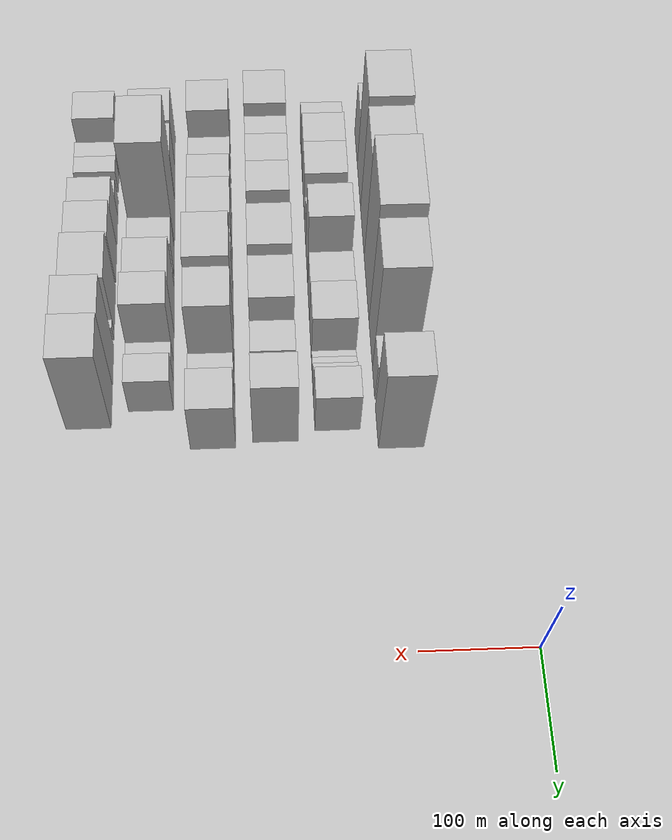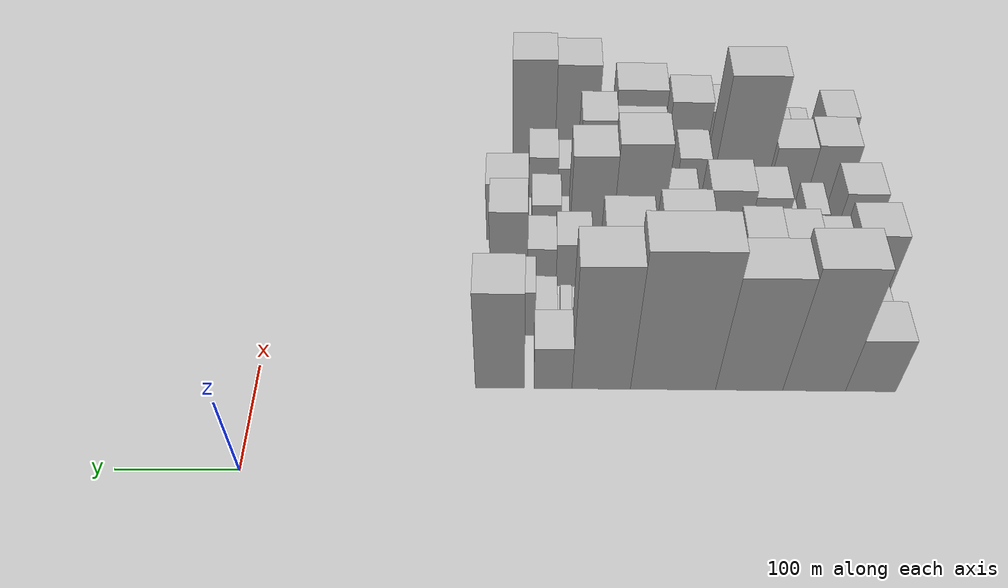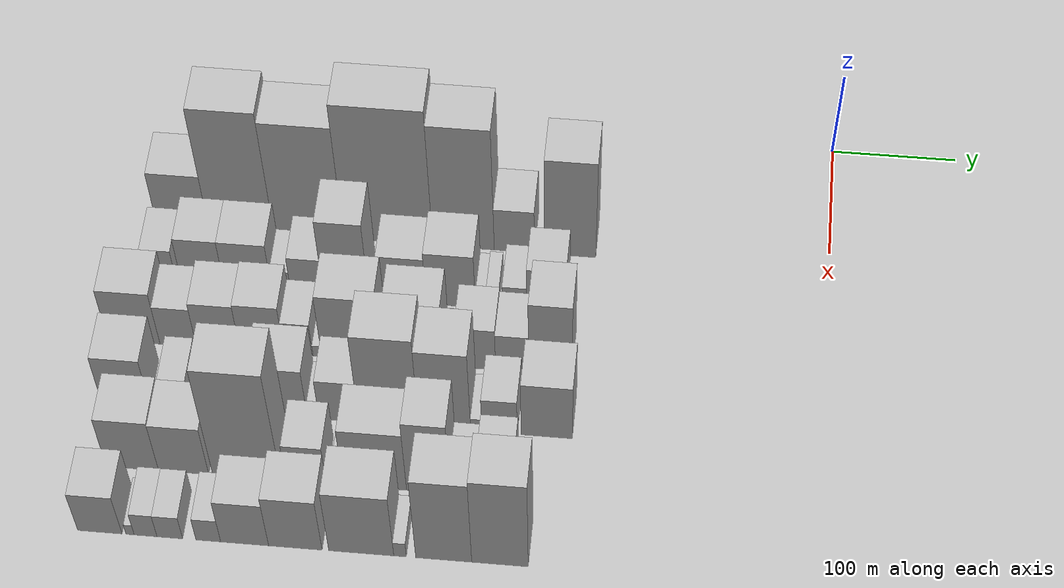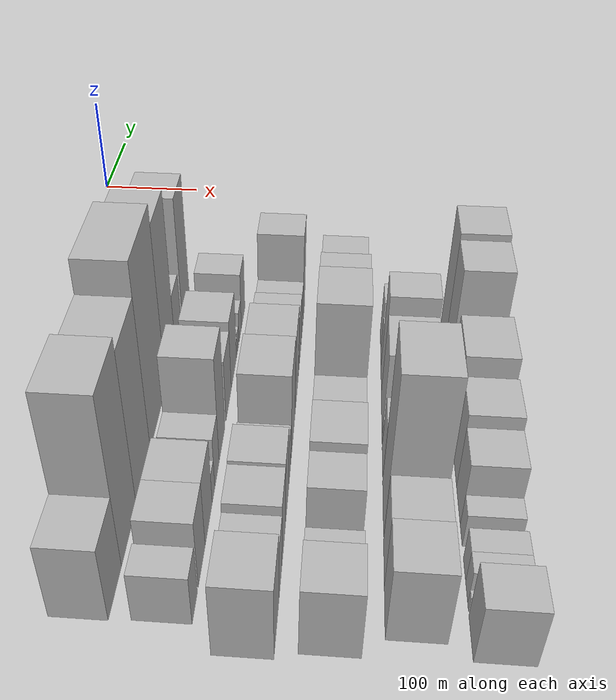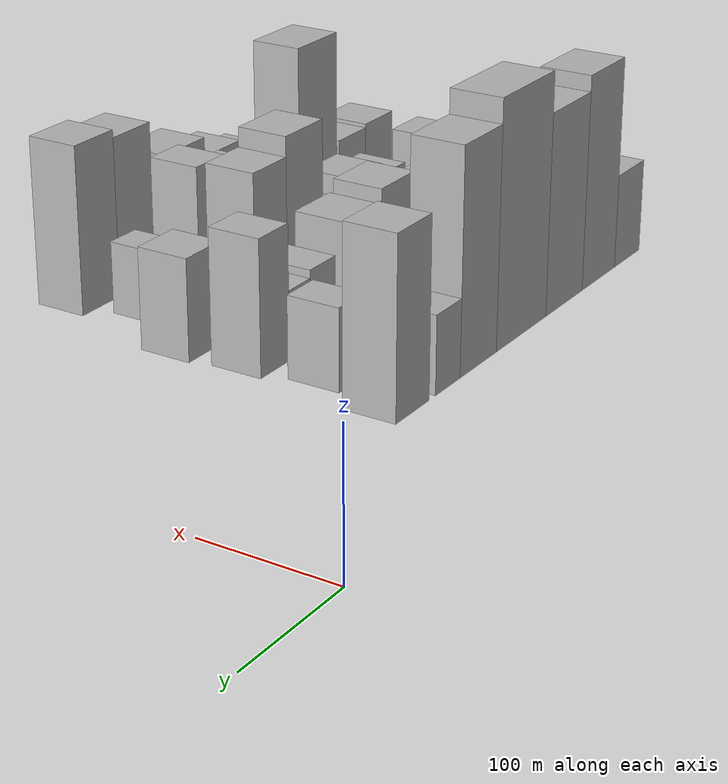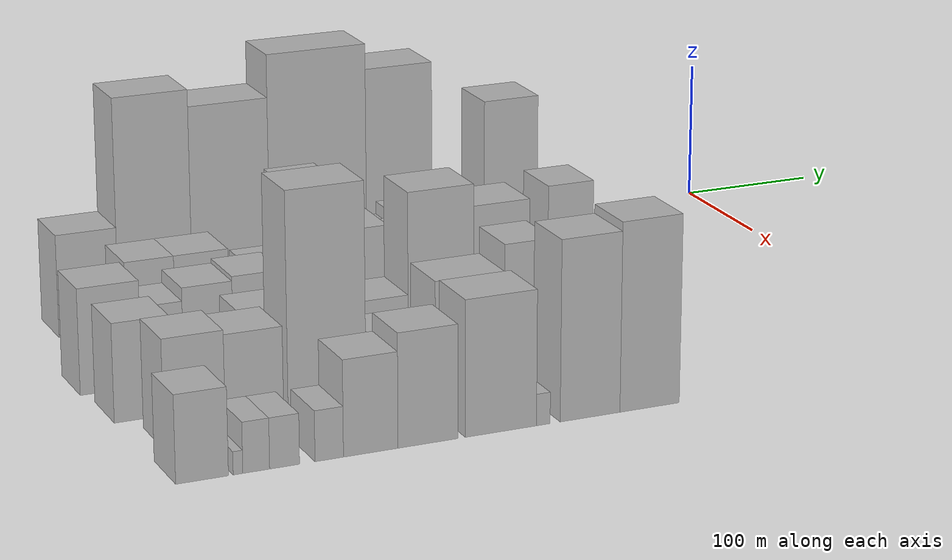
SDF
<sdf version="1.6">
 <world name="default">
  <model name="building_13">
   <static>1</static>
   <pose>100.0000 -517.2988 0 0.000000 0.000000 0.000000</pose>
   <link name="link">
    <pose>0 0 36.00 0 0 0</pose>
    <collision name="collision"><geometry><box><size>40.0000 42.1315 72.0000</size></box></geometry></collision>
    <visual name="visual">
     <cast_shadows>0</cast_shadows>
     <geometry><box><size>40.0000 42.1315 72.0000</size></box></geometry>
     <material>
      <script>
       <uri>model://HANNAS_wall/materials/scripts</uri>
       <uri>model://HANNAS_wall/materials/textures</uri>
       <name>vrc/HANNAS_wall</name>
      </script>
     </material>
    </visual>
   </link>
  </model>
  <model name="building_14">
   <static>1</static>
   <pose>100.0000 -469.8203 0 0.000000 0.000000 0.000000</pose>
   <link name="link">
    <pose>0 0 81.00 0 0 0</pose>
    <collision name="collision"><geometry><box><size>40.0000 52.8255 162.0000</size></box></geometry></collision>
    <visual name="visual">
     <cast_shadows>0</cast_shadows>
     <geometry><box><size>40.0000 52.8255 162.0000</size></box></geometry>
     <material>
      <script>
       <uri>model://HANNAS_wall/materials/scripts</uri>
       <uri>model://HANNAS_wall/materials/textures</uri>
       <name>vrc/HANNAS_wall</name>
      </script>
     </material>
    </visual>
   </link>
  </model>
  <model name="building_15">
   <static>1</static>
   <pose>100.0000 -415.1986 0 0.000000 0.000000 0.000000</pose>
   <link name="link">
    <pose>0 0 75.00 0 0 0</pose>
    <collision name="collision"><geometry><box><size>40.0000 56.4179 150.0000</size></box></geometry></collision>
    <visual name="visual">
     <cast_shadows>0</cast_shadows>
     <geometry><box><size>40.0000 56.4179 150.0000</size></box></geometry>
     <material>
      <script>
       <uri>model://HANNAS_wall/materials/scripts</uri>
       <uri>model://HANNAS_wall/materials/textures</uri>
       <name>vrc/HANNAS_wall</name>
      </script>
     </material>
    </visual>
   </link>
  </model>
  <model name="building_16">
   <static>1</static>
   <pose>100.0000 -351.2079 0 0.000000 0.000000 0.000000</pose>
   <link name="link">
    <pose>0 0 90.00 0 0 0</pose>
    <collision name="collision"><geometry><box><size>40.0000 71.5635 180.0000</size></box></geometry></collision>
    <visual name="visual">
     <cast_shadows>0</cast_shadows>
     <geometry><box><size>40.0000 71.5635 180.0000</size></box></geometry>
     <material>
      <script>
       <uri>model://HANNAS_wall/materials/scripts</uri>
       <uri>model://HANNAS_wall/materials/textures</uri>
       <name>vrc/HANNAS_wall</name>
      </script>
     </material>
    </visual>
   </link>
  </model>
  <model name="building_17">
   <static>1</static>
   <pose>100.0000 -290.7878 0 0.000000 0.000000 0.000000</pose>
   <link name="link">
    <pose>0 0 81.00 0 0 0</pose>
    <collision name="collision"><geometry><box><size>40.0000 49.2768 162.0000</size></box></geometry></collision>
    <visual name="visual">
     <cast_shadows>0</cast_shadows>
     <geometry><box><size>40.0000 49.2768 162.0000</size></box></geometry>
     <material>
      <script>
       <uri>model://HANNAS_wall/materials/scripts</uri>
       <uri>model://HANNAS_wall/materials/textures</uri>
       <name>vrc/HANNAS_wall</name>
      </script>
     </material>
    </visual>
   </link>
  </model>
  <model name="building_18">
   <static>1</static>
   <pose>100.0000 -250.1344 0 0.000000 0.000000 0.000000</pose>
   <link name="link">
    <pose>0 0 28.50 0 0 0</pose>
    <collision name="collision"><geometry><box><size>40.0000 32.0299 57.0000</size></box></geometry></collision>
    <visual name="visual">
     <cast_shadows>0</cast_shadows>
     <geometry><box><size>40.0000 32.0299 57.0000</size></box></geometry>
     <material>
      <script>
       <uri>model://HANNAS_wall/materials/scripts</uri>
       <uri>model://HANNAS_wall/materials/textures</uri>
       <name>vrc/HANNAS_wall</name>
      </script>
     </material>
    </visual>
   </link>
  </model>
  <model name="building_19">
   <static>1</static>
   <pose>100.0000 -205.5456 0 0.000000 0.000000 0.000000</pose>
   <link name="link">
    <pose>0 0 64.50 0 0 0</pose>
    <collision name="collision"><geometry><box><size>40.0000 41.1477 129.0000</size></box></geometry></collision>
    <visual name="visual">
     <cast_shadows>0</cast_shadows>
     <geometry><box><size>40.0000 41.1477 129.0000</size></box></geometry>
     <material>
      <script>
       <uri>model://HANNAS_wall/materials/scripts</uri>
       <uri>model://HANNAS_wall/materials/textures</uri>
       <name>vrc/HANNAS_wall</name>
      </script>
     </material>
    </visual>
   </link>
  </model>
  <model name="building_63">
   <static>1</static>
   <pose>155.0000 -524.7684 0 0.000000 0.000000 0.000000</pose>
   <link name="link">
    <pose>0 0 24.00 0 0 0</pose>
    <collision name="collision"><geometry><box><size>40.0000 24.3677 48.0000</size></box></geometry></collision>
    <visual name="visual">
     <cast_shadows>0</cast_shadows>
     <geometry><box><size>40.0000 24.3677 48.0000</size></box></geometry>
     <material>
      <script>
       <uri>model://HANNAS_wall/materials/scripts</uri>
       <uri>model://HANNAS_wall/materials/textures</uri>
       <name>vrc/HANNAS_wall</name>
      </script>
     </material>
    </visual>
   </link>
  </model>
  <model name="building_64">
   <static>1</static>
   <pose>155.0000 -491.5794 0 0.000000 0.000000 0.000000</pose>
   <link name="link">
    <pose>0 0 33.00 0 0 0</pose>
    <collision name="collision"><geometry><box><size>40.0000 34.0102 66.0000</size></box></geometry></collision>
    <visual name="visual">
     <cast_shadows>0</cast_shadows>
     <geometry><box><size>40.0000 34.0102 66.0000</size></box></geometry>
     <material>
      <script>
       <uri>model://HANNAS_wall/materials/scripts</uri>
       <uri>model://HANNAS_wall/materials/textures</uri>
       <name>vrc/HANNAS_wall</name>
      </script>
     </material>
    </visual>
   </link>
  </model>
  <model name="building_65">
   <static>1</static>
   <pose>155.0000 -455.6357 0 0.000000 0.000000 0.000000</pose>
   <link name="link">
    <pose>0 0 33.00 0 0 0</pose>
    <collision name="collision"><geometry><box><size>40.0000 37.8774 66.0000</size></box></geometry></collision>
    <visual name="visual">
     <cast_shadows>0</cast_shadows>
     <geometry><box><size>40.0000 37.8774 66.0000</size></box></geometry>
     <material>
      <script>
       <uri>model://HANNAS_wall/materials/scripts</uri>
       <uri>model://HANNAS_wall/materials/textures</uri>
       <name>vrc/HANNAS_wall</name>
      </script>
     </material>
    </visual>
   </link>
  </model>
  <model name="building_66">
   <static>1</static>
   <pose>155.0000 -429.1289 0 0.000000 0.000000 0.000000</pose>
   <link name="link">
    <pose>0 0 15.00 0 0 0</pose>
    <collision name="collision"><geometry><box><size>40.0000 15.1361 30.0000</size></box></geometry></collision>
    <visual name="visual">
     <cast_shadows>0</cast_shadows>
     <geometry><box><size>40.0000 15.1361 30.0000</size></box></geometry>
     <material>
      <script>
       <uri>model://HANNAS_wall/materials/scripts</uri>
       <uri>model://HANNAS_wall/materials/textures</uri>
       <name>vrc/HANNAS_wall</name>
      </script>
     </material>
    </visual>
   </link>
  </model>
  <model name="building_67">
   <static>1</static>
   <pose>155.0000 -408.6569 0 0.000000 0.000000 0.000000</pose>
   <link name="link">
    <pose>0 0 25.50 0 0 0</pose>
    <collision name="collision"><geometry><box><size>40.0000 25.8079 51.0000</size></box></geometry></collision>
    <visual name="visual">
     <cast_shadows>0</cast_shadows>
     <geometry><box><size>40.0000 25.8079 51.0000</size></box></geometry>
     <material>
      <script>
       <uri>model://HANNAS_wall/materials/scripts</uri>
       <uri>model://HANNAS_wall/materials/textures</uri>
       <name>vrc/HANNAS_wall</name>
      </script>
     </material>
    </visual>
   </link>
  </model>
  <model name="building_68">
   <static>1</static>
   <pose>155.0000 -377.7019 0 0.000000 0.000000 0.000000</pose>
   <link name="link">
    <pose>0 0 52.50 0 0 0</pose>
    <collision name="collision"><geometry><box><size>40.0000 36.1021 105.0000</size></box></geometry></collision>
    <visual name="visual">
     <cast_shadows>0</cast_shadows>
     <geometry><box><size>40.0000 36.1021 105.0000</size></box></geometry>
     <material>
      <script>
       <uri>model://HANNAS_wall/materials/scripts</uri>
       <uri>model://HANNAS_wall/materials/textures</uri>
       <name>vrc/HANNAS_wall</name>
      </script>
     </material>
    </visual>
   </link>
  </model>
  <model name="building_69">
   <static>1</static>
   <pose>155.0000 -333.0927 0 0.000000 0.000000 0.000000</pose>
   <link name="link">
    <pose>0 0 31.50 0 0 0</pose>
    <collision name="collision"><geometry><box><size>40.0000 37.1162 63.0000</size></box></geometry></collision>
    <visual name="visual">
     <cast_shadows>0</cast_shadows>
     <geometry><box><size>40.0000 37.1162 63.0000</size></box></geometry>
     <material>
      <script>
       <uri>model://HANNAS_wall/materials/scripts</uri>
       <uri>model://HANNAS_wall/materials/textures</uri>
       <name>vrc/HANNAS_wall</name>
      </script>
     </material>
    </visual>
   </link>
  </model>
  <model name="building_70">
   <static>1</static>
   <pose>155.0000 -295.0050 0 0.000000 0.000000 0.000000</pose>
   <link name="link">
    <pose>0 0 36.00 0 0 0</pose>
    <collision name="collision"><geometry><box><size>40.0000 39.0592 72.0000</size></box></geometry></collision>
    <visual name="visual">
     <cast_shadows>0</cast_shadows>
     <geometry><box><size>40.0000 39.0592 72.0000</size></box></geometry>
     <material>
      <script>
       <uri>model://HANNAS_wall/materials/scripts</uri>
       <uri>model://HANNAS_wall/materials/textures</uri>
       <name>vrc/HANNAS_wall</name>
      </script>
     </material>
    </visual>
   </link>
  </model>
  <model name="building_71">
   <static>1</static>
   <pose>155.0000 -271.3740 0 0.000000 0.000000 0.000000</pose>
   <link name="link">
    <pose>0 0 9.00 0 0 0</pose>
    <collision name="collision"><geometry><box><size>40.0000 8.2028 18.0000</size></box></geometry></collision>
    <visual name="visual">
     <cast_shadows>0</cast_shadows>
     <geometry><box><size>40.0000 8.2028 18.0000</size></box></geometry>
     <material>
      <script>
       <uri>model://HANNAS_wall/materials/scripts</uri>
       <uri>model://HANNAS_wall/materials/textures</uri>
       <name>vrc/HANNAS_wall</name>
      </script>
     </material>
    </visual>
   </link>
  </model>
  <model name="building_72">
   <static>1</static>
   <pose>155.0000 -262.2273 0 0.000000 0.000000 0.000000</pose>
   <link name="link">
    <pose>0 0 10.50 0 0 0</pose>
    <collision name="collision"><geometry><box><size>40.0000 10.0905 21.0000</size></box></geometry></collision>
    <visual name="visual">
     <cast_shadows>0</cast_shadows>
     <geometry><box><size>40.0000 10.0905 21.0000</size></box></geometry>
     <material>
      <script>
       <uri>model://HANNAS_wall/materials/scripts</uri>
       <uri>model://HANNAS_wall/materials/textures</uri>
       <name>vrc/HANNAS_wall</name>
      </script>
     </material>
    </visual>
   </link>
  </model>
  <model name="building_73">
   <static>1</static>
   <pose>155.0000 -244.6252 0 0.000000 0.000000 0.000000</pose>
   <link name="link">
    <pose>0 0 16.50 0 0 0</pose>
    <collision name="collision"><geometry><box><size>40.0000 19.1138 33.0000</size></box></geometry></collision>
    <visual name="visual">
     <cast_shadows>0</cast_shadows>
     <geometry><box><size>40.0000 19.1138 33.0000</size></box></geometry>
     <material>
      <script>
       <uri>model://HANNAS_wall/materials/scripts</uri>
       <uri>model://HANNAS_wall/materials/textures</uri>
       <name>vrc/HANNAS_wall</name>
      </script>
     </material>
    </visual>
   </link>
  </model>
  <model name="building_74">
   <static>1</static>
   <pose>155.0000 -219.6607 0 0.000000 0.000000 0.000000</pose>
   <link name="link">
    <pose>0 0 30.00 0 0 0</pose>
    <collision name="collision"><geometry><box><size>40.0000 30.8153 60.0000</size></box></geometry></collision>
    <visual name="visual">
     <cast_shadows>0</cast_shadows>
     <geometry><box><size>40.0000 30.8153 60.0000</size></box></geometry>
     <material>
      <script>
       <uri>model://HANNAS_wall/materials/scripts</uri>
       <uri>model://HANNAS_wall/materials/textures</uri>
       <name>vrc/HANNAS_wall</name>
      </script>
     </material>
    </visual>
   </link>
  </model>
  <model name="building_114">
   <static>1</static>
   <pose>210.0000 -537.2706 0 0.000000 0.000000 0.000000</pose>
   <link name="link">
    <pose>0 0 36.00 0 0 0</pose>
    <collision name="collision"><geometry><box><size>40.0000 41.1399 72.0000</size></box></geometry></collision>
    <visual name="visual">
     <cast_shadows>0</cast_shadows>
     <geometry><box><size>40.0000 41.1399 72.0000</size></box></geometry>
     <material>
      <script>
       <uri>model://HANNAS_wall/materials/scripts</uri>
       <uri>model://HANNAS_wall/materials/textures</uri>
       <name>vrc/HANNAS_wall</name>
      </script>
     </material>
    </visual>
   </link>
  </model>
  <model name="building_115">
   <static>1</static>
   <pose>210.0000 -502.3409 0 0.000000 0.000000 0.000000</pose>
   <link name="link">
    <pose>0 0 27.00 0 0 0</pose>
    <collision name="collision"><geometry><box><size>40.0000 28.7194 54.0000</size></box></geometry></collision>
    <visual name="visual">
     <cast_shadows>0</cast_shadows>
     <geometry><box><size>40.0000 28.7194 54.0000</size></box></geometry>
     <material>
      <script>
       <uri>model://HANNAS_wall/materials/scripts</uri>
       <uri>model://HANNAS_wall/materials/textures</uri>
       <name>vrc/HANNAS_wall</name>
      </script>
     </material>
    </visual>
   </link>
  </model>
  <model name="building_116">
   <static>1</static>
   <pose>210.0000 -470.8839 0 0.000000 0.000000 0.000000</pose>
   <link name="link">
    <pose>0 0 31.50 0 0 0</pose>
    <collision name="collision"><geometry><box><size>40.0000 34.1946 63.0000</size></box></geometry></collision>
    <visual name="visual">
     <cast_shadows>0</cast_shadows>
     <geometry><box><size>40.0000 34.1946 63.0000</size></box></geometry>
     <material>
      <script>
       <uri>model://HANNAS_wall/materials/scripts</uri>
       <uri>model://HANNAS_wall/materials/textures</uri>
       <name>vrc/HANNAS_wall</name>
      </script>
     </material>
    </visual>
   </link>
  </model>
  <model name="building_117">
   <static>1</static>
   <pose>210.0000 -436.3825 0 0.000000 0.000000 0.000000</pose>
   <link name="link">
    <pose>0 0 33.00 0 0 0</pose>
    <collision name="collision"><geometry><box><size>40.0000 34.8083 66.0000</size></box></geometry></collision>
    <visual name="visual">
     <cast_shadows>0</cast_shadows>
     <geometry><box><size>40.0000 34.8083 66.0000</size></box></geometry>
     <material>
      <script>
       <uri>model://HANNAS_wall/materials/scripts</uri>
       <uri>model://HANNAS_wall/materials/textures</uri>
       <name>vrc/HANNAS_wall</name>
      </script>
     </material>
    </visual>
   </link>
  </model>
  <model name="building_118">
   <static>1</static>
   <pose>210.0000 -407.7210 0 0.000000 0.000000 0.000000</pose>
   <link name="link">
    <pose>0 0 22.50 0 0 0</pose>
    <collision name="collision"><geometry><box><size>40.0000 22.5147 45.0000</size></box></geometry></collision>
    <visual name="visual">
     <cast_shadows>0</cast_shadows>
     <geometry><box><size>40.0000 22.5147 45.0000</size></box></geometry>
     <material>
      <script>
       <uri>model://HANNAS_wall/materials/scripts</uri>
       <uri>model://HANNAS_wall/materials/textures</uri>
       <name>vrc/HANNAS_wall</name>
      </script>
     </material>
    </visual>
   </link>
  </model>
  <model name="building_119">
   <static>1</static>
   <pose>210.0000 -393.0815 0 0.000000 0.000000 0.000000</pose>
   <link name="link">
    <pose>0 0 7.50 0 0 0</pose>
    <collision name="collision"><geometry><box><size>40.0000 6.7642 15.0000</size></box></geometry></collision>
    <visual name="visual">
     <cast_shadows>0</cast_shadows>
     <geometry><box><size>40.0000 6.7642 15.0000</size></box></geometry>
     <material>
      <script>
       <uri>model://HANNAS_wall/materials/scripts</uri>
       <uri>model://HANNAS_wall/materials/textures</uri>
       <name>vrc/HANNAS_wall</name>
      </script>
     </material>
    </visual>
   </link>
  </model>
  <model name="building_120">
   <static>1</static>
   <pose>210.0000 -367.2311 0 0.000000 0.000000 0.000000</pose>
   <link name="link">
    <pose>0 0 43.50 0 0 0</pose>
    <collision name="collision"><geometry><box><size>40.0000 44.9367 87.0000</size></box></geometry></collision>
    <visual name="visual">
     <cast_shadows>0</cast_shadows>
     <geometry><box><size>40.0000 44.9367 87.0000</size></box></geometry>
     <material>
      <script>
       <uri>model://HANNAS_wall/materials/scripts</uri>
       <uri>model://HANNAS_wall/materials/textures</uri>
       <name>vrc/HANNAS_wall</name>
      </script>
     </material>
    </visual>
   </link>
  </model>
  <model name="building_121">
   <static>1</static>
   <pose>210.0000 -317.6143 0 0.000000 0.000000 0.000000</pose>
   <link name="link">
    <pose>0 0 39.00 0 0 0</pose>
    <collision name="collision"><geometry><box><size>40.0000 44.2969 78.0000</size></box></geometry></collision>
    <visual name="visual">
     <cast_shadows>0</cast_shadows>
     <geometry><box><size>40.0000 44.2969 78.0000</size></box></geometry>
     <material>
      <script>
       <uri>model://HANNAS_wall/materials/scripts</uri>
       <uri>model://HANNAS_wall/materials/textures</uri>
       <name>vrc/HANNAS_wall</name>
      </script>
     </material>
    </visual>
   </link>
  </model>
  <model name="building_122">
   <static>1</static>
   <pose>210.0000 -290.3546 0 0.000000 0.000000 0.000000</pose>
   <link name="link">
    <pose>0 0 10.50 0 0 0</pose>
    <collision name="collision"><geometry><box><size>40.0000 10.2226 21.0000</size></box></geometry></collision>
    <visual name="visual">
     <cast_shadows>0</cast_shadows>
     <geometry><box><size>40.0000 10.2226 21.0000</size></box></geometry>
     <material>
      <script>
       <uri>model://HANNAS_wall/materials/scripts</uri>
       <uri>model://HANNAS_wall/materials/textures</uri>
       <name>vrc/HANNAS_wall</name>
      </script>
     </material>
    </visual>
   </link>
  </model>
  <model name="building_123">
   <static>1</static>
   <pose>210.0000 -269.6053 0 0.000000 0.000000 0.000000</pose>
   <link name="link">
    <pose>0 0 28.50 0 0 0</pose>
    <collision name="collision"><geometry><box><size>40.0000 31.2760 57.0000</size></box></geometry></collision>
    <visual name="visual">
     <cast_shadows>0</cast_shadows>
     <geometry><box><size>40.0000 31.2760 57.0000</size></box></geometry>
     <material>
      <script>
       <uri>model://HANNAS_wall/materials/scripts</uri>
       <uri>model://HANNAS_wall/materials/textures</uri>
       <name>vrc/HANNAS_wall</name>
      </script>
     </material>
    </visual>
   </link>
  </model>
  <model name="building_124">
   <static>1</static>
   <pose>210.0000 -241.1120 0 0.000000 0.000000 0.000000</pose>
   <link name="link">
    <pose>0 0 25.50 0 0 0</pose>
    <collision name="collision"><geometry><box><size>40.0000 25.7106 51.0000</size></box></geometry></collision>
    <visual name="visual">
     <cast_shadows>0</cast_shadows>
     <geometry><box><size>40.0000 25.7106 51.0000</size></box></geometry>
     <material>
      <script>
       <uri>model://HANNAS_wall/materials/scripts</uri>
       <uri>model://HANNAS_wall/materials/textures</uri>
       <name>vrc/HANNAS_wall</name>
      </script>
     </material>
    </visual>
   </link>
  </model>
  <model name="building_125">
   <static>1</static>
   <pose>210.0000 -211.4974 0 0.000000 0.000000 0.000000</pose>
   <link name="link">
    <pose>0 0 49.50 0 0 0</pose>
    <collision name="collision"><geometry><box><size>40.0000 33.5185 99.0000</size></box></geometry></collision>
    <visual name="visual">
     <cast_shadows>0</cast_shadows>
     <geometry><box><size>40.0000 33.5185 99.0000</size></box></geometry>
     <material>
      <script>
       <uri>model://HANNAS_wall/materials/scripts</uri>
       <uri>model://HANNAS_wall/materials/textures</uri>
       <name>vrc/HANNAS_wall</name>
      </script>
     </material>
    </visual>
   </link>
  </model>
  <model name="building_167">
   <static>1</static>
   <pose>265.0000 -533.9964 0 0.000000 0.000000 0.000000</pose>
   <link name="link">
    <pose>0 0 33.00 0 0 0</pose>
    <collision name="collision"><geometry><box><size>40.0000 37.6752 66.0000</size></box></geometry></collision>
    <visual name="visual">
     <cast_shadows>0</cast_shadows>
     <geometry><box><size>40.0000 37.6752 66.0000</size></box></geometry>
     <material>
      <script>
       <uri>model://HANNAS_wall/materials/scripts</uri>
       <uri>model://HANNAS_wall/materials/textures</uri>
       <name>vrc/HANNAS_wall</name>
      </script>
     </material>
    </visual>
   </link>
  </model>
  <model name="building_168">
   <static>1</static>
   <pose>265.0000 -494.4624 0 0.000000 0.000000 0.000000</pose>
   <link name="link">
    <pose>0 0 19.50 0 0 0</pose>
    <collision name="collision"><geometry><box><size>40.0000 21.3929 39.0000</size></box></geometry></collision>
    <visual name="visual">
     <cast_shadows>0</cast_shadows>
     <geometry><box><size>40.0000 21.3929 39.0000</size></box></geometry>
     <material>
      <script>
       <uri>model://HANNAS_wall/materials/scripts</uri>
       <uri>model://HANNAS_wall/materials/textures</uri>
       <name>vrc/HANNAS_wall</name>
      </script>
     </material>
    </visual>
   </link>
  </model>
  <model name="building_169">
   <static>1</static>
   <pose>265.0000 -480.7488 0 0.000000 0.000000 0.000000</pose>
   <link name="link">
    <pose>0 0 7.50 0 0 0</pose>
    <collision name="collision"><geometry><box><size>40.0000 6.0342 15.0000</size></box></geometry></collision>
    <visual name="visual">
     <cast_shadows>0</cast_shadows>
     <geometry><box><size>40.0000 6.0342 15.0000</size></box></geometry>
     <material>
      <script>
       <uri>model://HANNAS_wall/materials/scripts</uri>
       <uri>model://HANNAS_wall/materials/textures</uri>
       <name>vrc/HANNAS_wall</name>
      </script>
     </material>
    </visual>
   </link>
  </model>
  <model name="building_170">
   <static>1</static>
   <pose>265.0000 -451.0781 0 0.000000 0.000000 0.000000</pose>
   <link name="link">
    <pose>0 0 30.00 0 0 0</pose>
    <collision name="collision"><geometry><box><size>40.0000 33.3073 60.0000</size></box></geometry></collision>
    <visual name="visual">
     <cast_shadows>0</cast_shadows>
     <geometry><box><size>40.0000 33.3073 60.0000</size></box></geometry>
     <material>
      <script>
       <uri>model://HANNAS_wall/materials/scripts</uri>
       <uri>model://HANNAS_wall/materials/textures</uri>
       <name>vrc/HANNAS_wall</name>
      </script>
     </material>
    </visual>
   </link>
  </model>
  <model name="building_171">
   <static>1</static>
   <pose>265.0000 -413.7331 0 0.000000 0.000000 0.000000</pose>
   <link name="link">
    <pose>0 0 34.50 0 0 0</pose>
    <collision name="collision"><geometry><box><size>40.0000 41.3826 69.0000</size></box></geometry></collision>
    <visual name="visual">
     <cast_shadows>0</cast_shadows>
     <geometry><box><size>40.0000 41.3826 69.0000</size></box></geometry>
     <material>
      <script>
       <uri>model://HANNAS_wall/materials/scripts</uri>
       <uri>model://HANNAS_wall/materials/textures</uri>
       <name>vrc/HANNAS_wall</name>
      </script>
     </material>
    </visual>
   </link>
  </model>
  <model name="building_172">
   <static>1</static>
   <pose>265.0000 -388.5617 0 0.000000 0.000000 0.000000</pose>
   <link name="link">
    <pose>0 0 9.00 0 0 0</pose>
    <collision name="collision"><geometry><box><size>40.0000 8.9601 18.0000</size></box></geometry></collision>
    <visual name="visual">
     <cast_shadows>0</cast_shadows>
     <geometry><box><size>40.0000 8.9601 18.0000</size></box></geometry>
     <material>
      <script>
       <uri>model://HANNAS_wall/materials/scripts</uri>
       <uri>model://HANNAS_wall/materials/textures</uri>
       <name>vrc/HANNAS_wall</name>
      </script>
     </material>
    </visual>
   </link>
  </model>
  <model name="building_173">
   <static>1</static>
   <pose>265.0000 -368.8034 0 0.000000 0.000000 0.000000</pose>
   <link name="link">
    <pose>0 0 28.50 0 0 0</pose>
    <collision name="collision"><geometry><box><size>40.0000 30.5565 57.0000</size></box></geometry></collision>
    <visual name="visual">
     <cast_shadows>0</cast_shadows>
     <geometry><box><size>40.0000 30.5565 57.0000</size></box></geometry>
     <material>
      <script>
       <uri>model://HANNAS_wall/materials/scripts</uri>
       <uri>model://HANNAS_wall/materials/textures</uri>
       <name>vrc/HANNAS_wall</name>
      </script>
     </material>
    </visual>
   </link>
  </model>
  <model name="building_174">
   <static>1</static>
   <pose>265.0000 -330.4891 0 0.000000 0.000000 0.000000</pose>
   <link name="link">
    <pose>0 0 63.00 0 0 0</pose>
    <collision name="collision"><geometry><box><size>40.0000 46.0722 126.0000</size></box></geometry></collision>
    <visual name="visual">
     <cast_shadows>0</cast_shadows>
     <geometry><box><size>40.0000 46.0722 126.0000</size></box></geometry>
     <material>
      <script>
       <uri>model://HANNAS_wall/materials/scripts</uri>
       <uri>model://HANNAS_wall/materials/textures</uri>
       <name>vrc/HANNAS_wall</name>
      </script>
     </material>
    </visual>
   </link>
  </model>
  <model name="building_175">
   <static>1</static>
   <pose>265.0000 -287.5392 0 0.000000 0.000000 0.000000</pose>
   <link name="link">
    <pose>0 0 55.50 0 0 0</pose>
    <collision name="collision"><geometry><box><size>40.0000 39.8275 111.0000</size></box></geometry></collision>
    <visual name="visual">
     <cast_shadows>0</cast_shadows>
     <geometry><box><size>40.0000 39.8275 111.0000</size></box></geometry>
     <material>
      <script>
       <uri>model://HANNAS_wall/materials/scripts</uri>
       <uri>model://HANNAS_wall/materials/textures</uri>
       <name>vrc/HANNAS_wall</name>
      </script>
     </material>
    </visual>
   </link>
  </model>
  <model name="building_176">
   <static>1</static>
   <pose>265.0000 -263.3163 0 0.000000 0.000000 0.000000</pose>
   <link name="link">
    <pose>0 0 9.00 0 0 0</pose>
    <collision name="collision"><geometry><box><size>40.0000 8.6185 18.0000</size></box></geometry></collision>
    <visual name="visual">
     <cast_shadows>0</cast_shadows>
     <geometry><box><size>40.0000 8.6185 18.0000</size></box></geometry>
     <material>
      <script>
       <uri>model://HANNAS_wall/materials/scripts</uri>
       <uri>model://HANNAS_wall/materials/textures</uri>
       <name>vrc/HANNAS_wall</name>
      </script>
     </material>
    </visual>
   </link>
  </model>
  <model name="building_177">
   <static>1</static>
   <pose>265.0000 -245.4516 0 0.000000 0.000000 0.000000</pose>
   <link name="link">
    <pose>0 0 24.00 0 0 0</pose>
    <collision name="collision"><geometry><box><size>40.0000 27.1108 48.0000</size></box></geometry></collision>
    <visual name="visual">
     <cast_shadows>0</cast_shadows>
     <geometry><box><size>40.0000 27.1108 48.0000</size></box></geometry>
     <material>
      <script>
       <uri>model://HANNAS_wall/materials/scripts</uri>
       <uri>model://HANNAS_wall/materials/textures</uri>
       <name>vrc/HANNAS_wall</name>
      </script>
     </material>
    </visual>
   </link>
  </model>
  <model name="building_178">
   <static>1</static>
   <pose>265.0000 -209.3590 0 0.000000 0.000000 0.000000</pose>
   <link name="link">
    <pose>0 0 37.50 0 0 0</pose>
    <collision name="collision"><geometry><box><size>40.0000 39.0744 75.0000</size></box></geometry></collision>
    <visual name="visual">
     <cast_shadows>0</cast_shadows>
     <geometry><box><size>40.0000 39.0744 75.0000</size></box></geometry>
     <material>
      <script>
       <uri>model://HANNAS_wall/materials/scripts</uri>
       <uri>model://HANNAS_wall/materials/textures</uri>
       <name>vrc/HANNAS_wall</name>
      </script>
     </material>
    </visual>
   </link>
  </model>
  <model name="building_219">
   <static>1</static>
   <pose>320.0000 -518.7777 0 0.000000 0.000000 0.000000</pose>
   <link name="link">
    <pose>0 0 36.00 0 0 0</pose>
    <collision name="collision"><geometry><box><size>40.0000 39.9292 72.0000</size></box></geometry></collision>
    <visual name="visual">
     <cast_shadows>0</cast_shadows>
     <geometry><box><size>40.0000 39.9292 72.0000</size></box></geometry>
     <material>
      <script>
       <uri>model://HANNAS_wall/materials/scripts</uri>
       <uri>model://HANNAS_wall/materials/textures</uri>
       <name>vrc/HANNAS_wall</name>
      </script>
     </material>
    </visual>
   </link>
  </model>
  <model name="building_220">
   <static>1</static>
   <pose>320.0000 -479.6489 0 0.000000 0.000000 0.000000</pose>
   <link name="link">
    <pose>0 0 34.50 0 0 0</pose>
    <collision name="collision"><geometry><box><size>40.0000 38.3283 69.0000</size></box></geometry></collision>
    <visual name="visual">
     <cast_shadows>0</cast_shadows>
     <geometry><box><size>40.0000 38.3283 69.0000</size></box></geometry>
     <material>
      <script>
       <uri>model://HANNAS_wall/materials/scripts</uri>
       <uri>model://HANNAS_wall/materials/textures</uri>
       <name>vrc/HANNAS_wall</name>
      </script>
     </material>
    </visual>
   </link>
  </model>
  <model name="building_221">
   <static>1</static>
   <pose>320.0000 -431.4574 0 0.000000 0.000000 0.000000</pose>
   <link name="link">
    <pose>0 0 78.00 0 0 0</pose>
    <collision name="collision"><geometry><box><size>40.0000 52.0548 156.0000</size></box></geometry></collision>
    <visual name="visual">
     <cast_shadows>0</cast_shadows>
     <geometry><box><size>40.0000 52.0548 156.0000</size></box></geometry>
     <material>
      <script>
       <uri>model://HANNAS_wall/materials/scripts</uri>
       <uri>model://HANNAS_wall/materials/textures</uri>
       <name>vrc/HANNAS_wall</name>
      </script>
     </material>
    </visual>
   </link>
  </model>
  <model name="building_222">
   <static>1</static>
   <pose>320.0000 -386.2650 0 0.000000 0.000000 0.000000</pose>
   <link name="link">
    <pose>0 0 27.00 0 0 0</pose>
    <collision name="collision"><geometry><box><size>40.0000 30.3300 54.0000</size></box></geometry></collision>
    <visual name="visual">
     <cast_shadows>0</cast_shadows>
     <geometry><box><size>40.0000 30.3300 54.0000</size></box></geometry>
     <material>
      <script>
       <uri>model://HANNAS_wall/materials/scripts</uri>
       <uri>model://HANNAS_wall/materials/textures</uri>
       <name>vrc/HANNAS_wall</name>
      </script>
     </material>
    </visual>
   </link>
  </model>
  <model name="building_223">
   <static>1</static>
   <pose>320.0000 -362.6008 0 0.000000 0.000000 0.000000</pose>
   <link name="link">
    <pose>0 0 10.50 0 0 0</pose>
    <collision name="collision"><geometry><box><size>40.0000 8.9984 21.0000</size></box></geometry></collision>
    <visual name="visual">
     <cast_shadows>0</cast_shadows>
     <geometry><box><size>40.0000 8.9984 21.0000</size></box></geometry>
     <material>
      <script>
       <uri>model://HANNAS_wall/materials/scripts</uri>
       <uri>model://HANNAS_wall/materials/textures</uri>
       <name>vrc/HANNAS_wall</name>
      </script>
     </material>
    </visual>
   </link>
  </model>
  <model name="building_224">
   <static>1</static>
   <pose>320.0000 -334.1462 0 0.000000 0.000000 0.000000</pose>
   <link name="link">
    <pose>0 0 42.00 0 0 0</pose>
    <collision name="collision"><geometry><box><size>40.0000 47.9107 84.0000</size></box></geometry></collision>
    <visual name="visual">
     <cast_shadows>0</cast_shadows>
     <geometry><box><size>40.0000 47.9107 84.0000</size></box></geometry>
     <material>
      <script>
       <uri>model://HANNAS_wall/materials/scripts</uri>
       <uri>model://HANNAS_wall/materials/textures</uri>
       <name>vrc/HANNAS_wall</name>
      </script>
     </material>
    </visual>
   </link>
  </model>
  <model name="building_225">
   <static>1</static>
   <pose>320.0000 -293.7678 0 0.000000 0.000000 0.000000</pose>
   <link name="link">
    <pose>0 0 51.00 0 0 0</pose>
    <collision name="collision"><geometry><box><size>40.0000 32.8460 102.0000</size></box></geometry></collision>
    <visual name="visual">
     <cast_shadows>0</cast_shadows>
     <geometry><box><size>40.0000 32.8460 102.0000</size></box></geometry>
     <material>
      <script>
       <uri>model://HANNAS_wall/materials/scripts</uri>
       <uri>model://HANNAS_wall/materials/textures</uri>
       <name>vrc/HANNAS_wall</name>
      </script>
     </material>
    </visual>
   </link>
  </model>
  <model name="building_226">
   <static>1</static>
   <pose>320.0000 -267.2460 0 0.000000 0.000000 0.000000</pose>
   <link name="link">
    <pose>0 0 19.50 0 0 0</pose>
    <collision name="collision"><geometry><box><size>40.0000 20.1976 39.0000</size></box></geometry></collision>
    <visual name="visual">
     <cast_shadows>0</cast_shadows>
     <geometry><box><size>40.0000 20.1976 39.0000</size></box></geometry>
     <material>
      <script>
       <uri>model://HANNAS_wall/materials/scripts</uri>
       <uri>model://HANNAS_wall/materials/textures</uri>
       <name>vrc/HANNAS_wall</name>
      </script>
     </material>
    </visual>
   </link>
  </model>
  <model name="building_227">
   <static>1</static>
   <pose>320.0000 -243.1727 0 0.000000 0.000000 0.000000</pose>
   <link name="link">
    <pose>0 0 27.00 0 0 0</pose>
    <collision name="collision"><geometry><box><size>40.0000 27.9491 54.0000</size></box></geometry></collision>
    <visual name="visual">
     <cast_shadows>0</cast_shadows>
     <geometry><box><size>40.0000 27.9491 54.0000</size></box></geometry>
     <material>
      <script>
       <uri>model://HANNAS_wall/materials/scripts</uri>
       <uri>model://HANNAS_wall/materials/textures</uri>
       <name>vrc/HANNAS_wall</name>
      </script>
     </material>
    </visual>
   </link>
  </model>
  <model name="building_272">
   <static>1</static>
   <pose>375.0000 -533.4352 0 0.000000 0.000000 0.000000</pose>
   <link name="link">
    <pose>0 0 28.50 0 0 0</pose>
    <collision name="collision"><geometry><box><size>40.0000 33.3461 57.0000</size></box></geometry></collision>
    <visual name="visual">
     <cast_shadows>0</cast_shadows>
     <geometry><box><size>40.0000 33.3461 57.0000</size></box></geometry>
     <material>
      <script>
       <uri>model://HANNAS_wall/materials/scripts</uri>
       <uri>model://HANNAS_wall/materials/textures</uri>
       <name>vrc/HANNAS_wall</name>
      </script>
     </material>
    </visual>
   </link>
  </model>
  <model name="building_273">
   <static>1</static>
   <pose>375.0000 -510.6908 0 0.000000 0.000000 0.000000</pose>
   <link name="link">
    <pose>0 0 7.50 0 0 0</pose>
    <collision name="collision"><geometry><box><size>40.0000 6.1426 15.0000</size></box></geometry></collision>
    <visual name="visual">
     <cast_shadows>0</cast_shadows>
     <geometry><box><size>40.0000 6.1426 15.0000</size></box></geometry>
     <material>
      <script>
       <uri>model://HANNAS_wall/materials/scripts</uri>
       <uri>model://HANNAS_wall/materials/textures</uri>
       <name>vrc/HANNAS_wall</name>
      </script>
     </material>
    </visual>
   </link>
  </model>
  <model name="building_274">
   <static>1</static>
   <pose>375.0000 -499.0376 0 0.000000 0.000000 0.000000</pose>
   <link name="link">
    <pose>0 0 16.50 0 0 0</pose>
    <collision name="collision"><geometry><box><size>40.0000 17.1638 33.0000</size></box></geometry></collision>
    <visual name="visual">
     <cast_shadows>0</cast_shadows>
     <geometry><box><size>40.0000 17.1638 33.0000</size></box></geometry>
     <material>
      <script>
       <uri>model://HANNAS_wall/materials/scripts</uri>
       <uri>model://HANNAS_wall/materials/textures</uri>
       <name>vrc/HANNAS_wall</name>
      </script>
     </material>
    </visual>
   </link>
  </model>
  <model name="building_275">
   <static>1</static>
   <pose>375.0000 -480.8169 0 0.000000 0.000000 0.000000</pose>
   <link name="link">
    <pose>0 0 16.50 0 0 0</pose>
    <collision name="collision"><geometry><box><size>40.0000 19.2777 33.0000</size></box></geometry></collision>
    <visual name="visual">
     <cast_shadows>0</cast_shadows>
     <geometry><box><size>40.0000 19.2777 33.0000</size></box></geometry>
     <material>
      <script>
       <uri>model://HANNAS_wall/materials/scripts</uri>
       <uri>model://HANNAS_wall/materials/textures</uri>
       <name>vrc/HANNAS_wall</name>
      </script>
     </material>
    </visual>
   </link>
  </model>
  <model name="building_276">
   <static>1</static>
   <pose>375.0000 -451.9052 0 0.000000 0.000000 0.000000</pose>
   <link name="link">
    <pose>0 0 16.50 0 0 0</pose>
    <collision name="collision"><geometry><box><size>40.0000 18.5457 33.0000</size></box></geometry></collision>
    <visual name="visual">
     <cast_shadows>0</cast_shadows>
     <geometry><box><size>40.0000 18.5457 33.0000</size></box></geometry>
     <material>
      <script>
       <uri>model://HANNAS_wall/materials/scripts</uri>
       <uri>model://HANNAS_wall/materials/textures</uri>
       <name>vrc/HANNAS_wall</name>
      </script>
     </material>
    </visual>
   </link>
  </model>
  <model name="building_277">
   <static>1</static>
   <pose>375.0000 -424.6555 0 0.000000 0.000000 0.000000</pose>
   <link name="link">
    <pose>0 0 31.50 0 0 0</pose>
    <collision name="collision"><geometry><box><size>40.0000 35.9537 63.0000</size></box></geometry></collision>
    <visual name="visual">
     <cast_shadows>0</cast_shadows>
     <geometry><box><size>40.0000 35.9537 63.0000</size></box></geometry>
     <material>
      <script>
       <uri>model://HANNAS_wall/materials/scripts</uri>
       <uri>model://HANNAS_wall/materials/textures</uri>
       <name>vrc/HANNAS_wall</name>
      </script>
     </material>
    </visual>
   </link>
  </model>
  <model name="building_278">
   <static>1</static>
   <pose>375.0000 -386.6809 0 0.000000 0.000000 0.000000</pose>
   <link name="link">
    <pose>0 0 37.50 0 0 0</pose>
    <collision name="collision"><geometry><box><size>40.0000 39.9954 75.0000</size></box></geometry></collision>
    <visual name="visual">
     <cast_shadows>0</cast_shadows>
     <geometry><box><size>40.0000 39.9954 75.0000</size></box></geometry>
     <material>
      <script>
       <uri>model://HANNAS_wall/materials/scripts</uri>
       <uri>model://HANNAS_wall/materials/textures</uri>
       <name>vrc/HANNAS_wall</name>
      </script>
     </material>
    </visual>
   </link>
  </model>
  <model name="building_279">
   <static>1</static>
   <pose>375.0000 -337.4347 0 0.000000 0.000000 0.000000</pose>
   <link name="link">
    <pose>0 0 45.00 0 0 0</pose>
    <collision name="collision"><geometry><box><size>40.0000 48.4970 90.0000</size></box></geometry></collision>
    <visual name="visual">
     <cast_shadows>0</cast_shadows>
     <geometry><box><size>40.0000 48.4970 90.0000</size></box></geometry>
     <material>
      <script>
       <uri>model://HANNAS_wall/materials/scripts</uri>
       <uri>model://HANNAS_wall/materials/textures</uri>
       <name>vrc/HANNAS_wall</name>
      </script>
     </material>
    </visual>
   </link>
  </model>
  <model name="building_280">
   <static>1</static>
   <pose>375.0000 -308.5053 0 0.000000 0.000000 0.000000</pose>
   <link name="link">
    <pose>0 0 10.50 0 0 0</pose>
    <collision name="collision"><geometry><box><size>40.0000 9.3619 21.0000</size></box></geometry></collision>
    <visual name="visual">
     <cast_shadows>0</cast_shadows>
     <geometry><box><size>40.0000 9.3619 21.0000</size></box></geometry>
     <material>
      <script>
       <uri>model://HANNAS_wall/materials/scripts</uri>
       <uri>model://HANNAS_wall/materials/textures</uri>
       <name>vrc/HANNAS_wall</name>
      </script>
     </material>
    </visual>
   </link>
  </model>
  <model name="building_281">
   <static>1</static>
   <pose>375.0000 -276.0103 0 0.000000 0.000000 0.000000</pose>
   <link name="link">
    <pose>0 0 60.00 0 0 0</pose>
    <collision name="collision"><geometry><box><size>40.0000 41.6281 120.0000</size></box></geometry></collision>
    <visual name="visual">
     <cast_shadows>0</cast_shadows>
     <geometry><box><size>40.0000 41.6281 120.0000</size></box></geometry>
     <material>
      <script>
       <uri>model://HANNAS_wall/materials/scripts</uri>
       <uri>model://HANNAS_wall/materials/textures</uri>
       <name>vrc/HANNAS_wall</name>
      </script>
     </material>
    </visual>
   </link>
  </model>
  <model name="building_282">
   <static>1</static>
   <pose>375.0000 -234.2285 0 0.000000 0.000000 0.000000</pose>
   <link name="link">
    <pose>0 0 63.00 0 0 0</pose>
    <collision name="collision"><geometry><box><size>40.0000 41.9356 126.0000</size></box></geometry></collision>
    <visual name="visual">
     <cast_shadows>0</cast_shadows>
     <geometry><box><size>40.0000 41.9356 126.0000</size></box></geometry>
     <material>
      <script>
       <uri>model://HANNAS_wall/materials/scripts</uri>
       <uri>model://HANNAS_wall/materials/textures</uri>
       <name>vrc/HANNAS_wall</name>
      </script>
     </material>
    </visual>
   </link>
  </model>
 </world>
</sdf>
